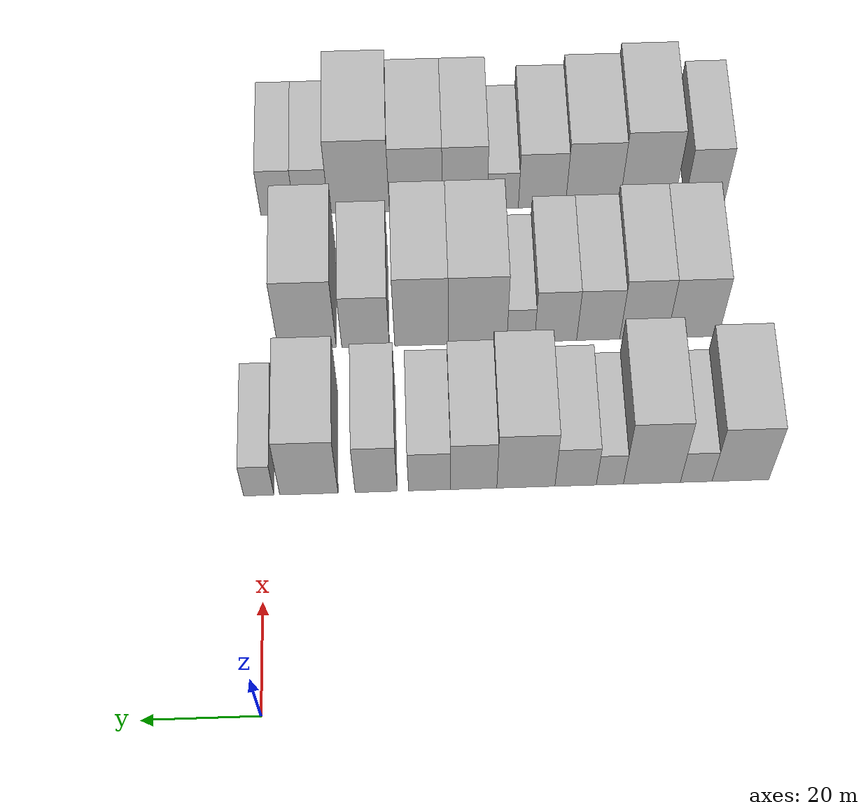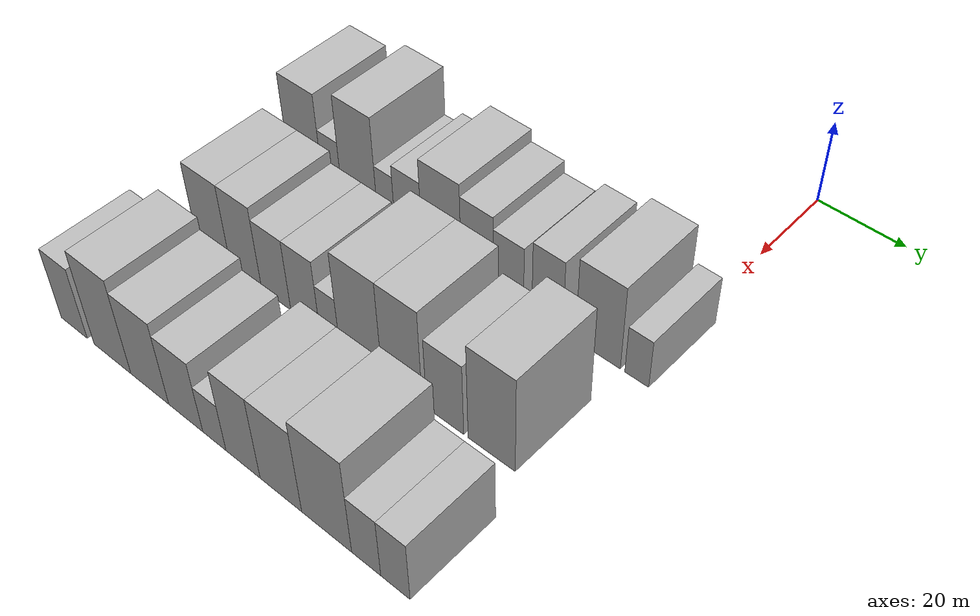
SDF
<sdf version="1.6">
 <world name="default">
  <model name="building_29">
   <static>1</static>
   <pose>50.0000 -83.8792 0 0.000000 0.000000 0.000000</pose>
   <link name="link">
    <pose>0 0 10.50 0 0 0</pose>
    <collision name="collision"><geometry><box><size>20.0000 10.0511 21.0000</size></box></geometry></collision>
    <visual name="visual">
     <cast_shadows>0</cast_shadows>
     <geometry><box><size>20.0000 10.0511 21.0000</size></box></geometry>
     <material>
      <script>
       <uri>model://HANNAS_wall/materials/scripts</uri>
       <uri>model://HANNAS_wall/materials/textures</uri>
       <name>vrc/HANNAS_wall</name>
      </script>
     </material>
    </visual>
   </link>
  </model>
  <model name="building_30">
   <static>1</static>
   <pose>50.0000 -76.0548 0 0.000000 0.000000 0.000000</pose>
   <link name="link">
    <pose>0 0 6.00 0 0 0</pose>
    <collision name="collision"><geometry><box><size>20.0000 5.5977 12.0000</size></box></geometry></collision>
    <visual name="visual">
     <cast_shadows>0</cast_shadows>
     <geometry><box><size>20.0000 5.5977 12.0000</size></box></geometry>
     <material>
      <script>
       <uri>model://HANNAS_wall/materials/scripts</uri>
       <uri>model://HANNAS_wall/materials/textures</uri>
       <name>vrc/HANNAS_wall</name>
      </script>
     </material>
    </visual>
   </link>
  </model>
  <model name="building_31">
   <static>1</static>
   <pose>50.0000 -68.2252 0 0.000000 0.000000 0.000000</pose>
   <link name="link">
    <pose>0 0 12.00 0 0 0</pose>
    <collision name="collision"><geometry><box><size>20.0000 10.0615 24.0000</size></box></geometry></collision>
    <visual name="visual">
     <cast_shadows>0</cast_shadows>
     <geometry><box><size>20.0000 10.0615 24.0000</size></box></geometry>
     <material>
      <script>
       <uri>model://HANNAS_wall/materials/scripts</uri>
       <uri>model://HANNAS_wall/materials/textures</uri>
       <name>vrc/HANNAS_wall</name>
      </script>
     </material>
    </visual>
   </link>
  </model>
  <model name="building_32">
   <static>1</static>
   <pose>50.0000 -60.7939 0 0.000000 0.000000 0.000000</pose>
   <link name="link">
    <pose>0 0 6.00 0 0 0</pose>
    <collision name="collision"><geometry><box><size>20.0000 4.8011 12.0000</size></box></geometry></collision>
    <visual name="visual">
     <cast_shadows>0</cast_shadows>
     <geometry><box><size>20.0000 4.8011 12.0000</size></box></geometry>
     <material>
      <script>
       <uri>model://HANNAS_wall/materials/scripts</uri>
       <uri>model://HANNAS_wall/materials/textures</uri>
       <name>vrc/HANNAS_wall</name>
      </script>
     </material>
    </visual>
   </link>
  </model>
  <model name="building_33">
   <static>1</static>
   <pose>50.0000 -54.7445 0 0.000000 0.000000 0.000000</pose>
   <link name="link">
    <pose>0 0 7.50 0 0 0</pose>
    <collision name="collision"><geometry><box><size>20.0000 7.2978 15.0000</size></box></geometry></collision>
    <visual name="visual">
     <cast_shadows>0</cast_shadows>
     <geometry><box><size>20.0000 7.2978 15.0000</size></box></geometry>
     <material>
      <script>
       <uri>model://HANNAS_wall/materials/scripts</uri>
       <uri>model://HANNAS_wall/materials/textures</uri>
       <name>vrc/HANNAS_wall</name>
      </script>
     </material>
    </visual>
   </link>
  </model>
  <model name="building_34">
   <static>1</static>
   <pose>50.0000 -45.9717 0 0.000000 0.000000 0.000000</pose>
   <link name="link">
    <pose>0 0 10.50 0 0 0</pose>
    <collision name="collision"><geometry><box><size>20.0000 10.2478 21.0000</size></box></geometry></collision>
    <visual name="visual">
     <cast_shadows>0</cast_shadows>
     <geometry><box><size>20.0000 10.2478 21.0000</size></box></geometry>
     <material>
      <script>
       <uri>model://HANNAS_wall/materials/scripts</uri>
       <uri>model://HANNAS_wall/materials/textures</uri>
       <name>vrc/HANNAS_wall</name>
      </script>
     </material>
    </visual>
   </link>
  </model>
  <model name="building_35">
   <static>1</static>
   <pose>50.0000 -36.7895 0 0.000000 0.000000 0.000000</pose>
   <link name="link">
    <pose>0 0 9.00 0 0 0</pose>
    <collision name="collision"><geometry><box><size>20.0000 8.1166 18.0000</size></box></geometry></collision>
    <visual name="visual">
     <cast_shadows>0</cast_shadows>
     <geometry><box><size>20.0000 8.1166 18.0000</size></box></geometry>
     <material>
      <script>
       <uri>model://HANNAS_wall/materials/scripts</uri>
       <uri>model://HANNAS_wall/materials/textures</uri>
       <name>vrc/HANNAS_wall</name>
      </script>
     </material>
    </visual>
   </link>
  </model>
  <model name="building_36">
   <static>1</static>
   <pose>50.0000 -29.0209 0 0.000000 0.000000 0.000000</pose>
   <link name="link">
    <pose>0 0 7.50 0 0 0</pose>
    <collision name="collision"><geometry><box><size>20.0000 7.4207 15.0000</size></box></geometry></collision>
    <visual name="visual">
     <cast_shadows>0</cast_shadows>
     <geometry><box><size>20.0000 7.4207 15.0000</size></box></geometry>
     <material>
      <script>
       <uri>model://HANNAS_wall/materials/scripts</uri>
       <uri>model://HANNAS_wall/materials/textures</uri>
       <name>vrc/HANNAS_wall</name>
      </script>
     </material>
    </visual>
   </link>
  </model>
  <model name="building_37">
   <static>1</static>
   <pose>50.0000 -19.6073 0 0.000000 0.000000 0.000000</pose>
   <link name="link">
    <pose>0 0 9.00 0 0 0</pose>
    <collision name="collision"><geometry><box><size>20.0000 7.4065 18.0000</size></box></geometry></collision>
    <visual name="visual">
     <cast_shadows>0</cast_shadows>
     <geometry><box><size>20.0000 7.4065 18.0000</size></box></geometry>
     <material>
      <script>
       <uri>model://HANNAS_wall/materials/scripts</uri>
       <uri>model://HANNAS_wall/materials/textures</uri>
       <name>vrc/HANNAS_wall</name>
      </script>
     </material>
    </visual>
   </link>
  </model>
  <model name="building_38">
   <static>1</static>
   <pose>50.0000 -7.7778 0 0.000000 0.000000 0.000000</pose>
   <link name="link">
    <pose>0 0 10.50 0 0 0</pose>
    <collision name="collision"><geometry><box><size>20.0000 10.2526 21.0000</size></box></geometry></collision>
    <visual name="visual">
     <cast_shadows>0</cast_shadows>
     <geometry><box><size>20.0000 10.2526 21.0000</size></box></geometry>
     <material>
      <script>
       <uri>model://HANNAS_wall/materials/scripts</uri>
       <uri>model://HANNAS_wall/materials/textures</uri>
       <name>vrc/HANNAS_wall</name>
      </script>
     </material>
    </visual>
   </link>
  </model>
  <model name="building_39">
   <static>1</static>
   <pose>50.0000 1.0077 0 0.000000 0.000000 0.000000</pose>
   <link name="link">
    <pose>0 0 6.00 0 0 0</pose>
    <collision name="collision"><geometry><box><size>20.0000 5.3183 12.0000</size></box></geometry></collision>
    <visual name="visual">
     <cast_shadows>0</cast_shadows>
     <geometry><box><size>20.0000 5.3183 12.0000</size></box></geometry>
     <material>
      <script>
       <uri>model://HANNAS_wall/materials/scripts</uri>
       <uri>model://HANNAS_wall/materials/textures</uri>
       <name>vrc/HANNAS_wall</name>
      </script>
     </material>
    </visual>
   </link>
  </model>
  <model name="building_106">
   <static>1</static>
   <pose>79.0000 -78.1845 0 0.000000 0.000000 0.000000</pose>
   <link name="link">
    <pose>0 0 10.50 0 0 0</pose>
    <collision name="collision"><geometry><box><size>20.0000 9.4783 21.0000</size></box></geometry></collision>
    <visual name="visual">
     <cast_shadows>0</cast_shadows>
     <geometry><box><size>20.0000 9.4783 21.0000</size></box></geometry>
     <material>
      <script>
       <uri>model://HANNAS_wall/materials/scripts</uri>
       <uri>model://HANNAS_wall/materials/textures</uri>
       <name>vrc/HANNAS_wall</name>
      </script>
     </material>
    </visual>
   </link>
  </model>
  <model name="building_107">
   <static>1</static>
   <pose>79.0000 -69.0837 0 0.000000 0.000000 0.000000</pose>
   <link name="link">
    <pose>0 0 10.50 0 0 0</pose>
    <collision name="collision"><geometry><box><size>20.0000 8.7234 21.0000</size></box></geometry></collision>
    <visual name="visual">
     <cast_shadows>0</cast_shadows>
     <geometry><box><size>20.0000 8.7234 21.0000</size></box></geometry>
     <material>
      <script>
       <uri>model://HANNAS_wall/materials/scripts</uri>
       <uri>model://HANNAS_wall/materials/textures</uri>
       <name>vrc/HANNAS_wall</name>
      </script>
     </material>
    </visual>
   </link>
  </model>
  <model name="building_108">
   <static>1</static>
   <pose>79.0000 -60.7558 0 0.000000 0.000000 0.000000</pose>
   <link name="link">
    <pose>0 0 9.00 0 0 0</pose>
    <collision name="collision"><geometry><box><size>20.0000 7.9325 18.0000</size></box></geometry></collision>
    <visual name="visual">
     <cast_shadows>0</cast_shadows>
     <geometry><box><size>20.0000 7.9325 18.0000</size></box></geometry>
     <material>
      <script>
       <uri>model://HANNAS_wall/materials/scripts</uri>
       <uri>model://HANNAS_wall/materials/textures</uri>
       <name>vrc/HANNAS_wall</name>
      </script>
     </material>
    </visual>
   </link>
  </model>
  <model name="building_109">
   <static>1</static>
   <pose>79.0000 -52.9318 0 0.000000 0.000000 0.000000</pose>
   <link name="link">
    <pose>0 0 9.00 0 0 0</pose>
    <collision name="collision"><geometry><box><size>20.0000 7.7155 18.0000</size></box></geometry></collision>
    <visual name="visual">
     <cast_shadows>0</cast_shadows>
     <geometry><box><size>20.0000 7.7155 18.0000</size></box></geometry>
     <material>
      <script>
       <uri>model://HANNAS_wall/materials/scripts</uri>
       <uri>model://HANNAS_wall/materials/textures</uri>
       <name>vrc/HANNAS_wall</name>
      </script>
     </material>
    </visual>
   </link>
  </model>
  <model name="building_110">
   <static>1</static>
   <pose>79.0000 -46.5285 0 0.000000 0.000000 0.000000</pose>
   <link name="link">
    <pose>0 0 6.00 0 0 0</pose>
    <collision name="collision"><geometry><box><size>20.0000 5.0912 12.0000</size></box></geometry></collision>
    <visual name="visual">
     <cast_shadows>0</cast_shadows>
     <geometry><box><size>20.0000 5.0912 12.0000</size></box></geometry>
     <material>
      <script>
       <uri>model://HANNAS_wall/materials/scripts</uri>
       <uri>model://HANNAS_wall/materials/textures</uri>
       <name>vrc/HANNAS_wall</name>
      </script>
     </material>
    </visual>
   </link>
  </model>
  <model name="building_111">
   <static>1</static>
   <pose>79.0000 -38.6144 0 0.000000 0.000000 0.000000</pose>
   <link name="link">
    <pose>0 0 12.00 0 0 0</pose>
    <collision name="collision"><geometry><box><size>20.0000 10.7369 24.0000</size></box></geometry></collision>
    <visual name="visual">
     <cast_shadows>0</cast_shadows>
     <geometry><box><size>20.0000 10.7369 24.0000</size></box></geometry>
     <material>
      <script>
       <uri>model://HANNAS_wall/materials/scripts</uri>
       <uri>model://HANNAS_wall/materials/textures</uri>
       <name>vrc/HANNAS_wall</name>
      </script>
     </material>
    </visual>
   </link>
  </model>
  <model name="building_112">
   <static>1</static>
   <pose>79.0000 -28.3461 0 0.000000 0.000000 0.000000</pose>
   <link name="link">
    <pose>0 0 12.00 0 0 0</pose>
    <collision name="collision"><geometry><box><size>20.0000 9.7996 24.0000</size></box></geometry></collision>
    <visual name="visual">
     <cast_shadows>0</cast_shadows>
     <geometry><box><size>20.0000 9.7996 24.0000</size></box></geometry>
     <material>
      <script>
       <uri>model://HANNAS_wall/materials/scripts</uri>
       <uri>model://HANNAS_wall/materials/textures</uri>
       <name>vrc/HANNAS_wall</name>
      </script>
     </material>
    </visual>
   </link>
  </model>
  <model name="building_113">
   <static>1</static>
   <pose>79.0000 -18.0942 0 0.000000 0.000000 0.000000</pose>
   <link name="link">
    <pose>0 0 9.00 0 0 0</pose>
    <collision name="collision"><geometry><box><size>20.0000 8.7042 18.0000</size></box></geometry></collision>
    <visual name="visual">
     <cast_shadows>0</cast_shadows>
     <geometry><box><size>20.0000 8.7042 18.0000</size></box></geometry>
     <material>
      <script>
       <uri>model://HANNAS_wall/materials/scripts</uri>
       <uri>model://HANNAS_wall/materials/textures</uri>
       <name>vrc/HANNAS_wall</name>
      </script>
     </material>
    </visual>
   </link>
  </model>
  <model name="building_114">
   <static>1</static>
   <pose>79.0000 -7.4302 0 0.000000 0.000000 0.000000</pose>
   <link name="link">
    <pose>0 0 12.00 0 0 0</pose>
    <collision name="collision"><geometry><box><size>20.0000 10.6237 24.0000</size></box></geometry></collision>
    <visual name="visual">
     <cast_shadows>0</cast_shadows>
     <geometry><box><size>20.0000 10.6237 24.0000</size></box></geometry>
     <material>
      <script>
       <uri>model://HANNAS_wall/materials/scripts</uri>
       <uri>model://HANNAS_wall/materials/textures</uri>
       <name>vrc/HANNAS_wall</name>
      </script>
     </material>
    </visual>
   </link>
  </model>
  <model name="building_185">
   <static>1</static>
   <pose>108.0000 -83.1524 0 0.000000 0.000000 0.000000</pose>
   <link name="link">
    <pose>0 0 9.00 0 0 0</pose>
    <collision name="collision"><geometry><box><size>20.0000 7.6091 18.0000</size></box></geometry></collision>
    <visual name="visual">
     <cast_shadows>0</cast_shadows>
     <geometry><box><size>20.0000 7.6091 18.0000</size></box></geometry>
     <material>
      <script>
       <uri>model://HANNAS_wall/materials/scripts</uri>
       <uri>model://HANNAS_wall/materials/textures</uri>
       <name>vrc/HANNAS_wall</name>
      </script>
     </material>
    </visual>
   </link>
  </model>
  <model name="building_186">
   <static>1</static>
   <pose>108.0000 -72.1234 0 0.000000 0.000000 0.000000</pose>
   <link name="link">
    <pose>0 0 12.00 0 0 0</pose>
    <collision name="collision"><geometry><box><size>20.0000 10.4487 24.0000</size></box></geometry></collision>
    <visual name="visual">
     <cast_shadows>0</cast_shadows>
     <geometry><box><size>20.0000 10.4487 24.0000</size></box></geometry>
     <material>
      <script>
       <uri>model://HANNAS_wall/materials/scripts</uri>
       <uri>model://HANNAS_wall/materials/textures</uri>
       <name>vrc/HANNAS_wall</name>
      </script>
     </material>
    </visual>
   </link>
  </model>
  <model name="building_187">
   <static>1</static>
   <pose>108.0000 -61.7121 0 0.000000 0.000000 0.000000</pose>
   <link name="link">
    <pose>0 0 10.50 0 0 0</pose>
    <collision name="collision"><geometry><box><size>20.0000 10.3739 21.0000</size></box></geometry></collision>
    <visual name="visual">
     <cast_shadows>0</cast_shadows>
     <geometry><box><size>20.0000 10.3739 21.0000</size></box></geometry>
     <material>
      <script>
       <uri>model://HANNAS_wall/materials/scripts</uri>
       <uri>model://HANNAS_wall/materials/textures</uri>
       <name>vrc/HANNAS_wall</name>
      </script>
     </material>
    </visual>
   </link>
  </model>
  <model name="building_188">
   <static>1</static>
   <pose>108.0000 -52.0354 0 0.000000 0.000000 0.000000</pose>
   <link name="link">
    <pose>0 0 9.00 0 0 0</pose>
    <collision name="collision"><geometry><box><size>20.0000 8.9794 18.0000</size></box></geometry></collision>
    <visual name="visual">
     <cast_shadows>0</cast_shadows>
     <geometry><box><size>20.0000 8.9794 18.0000</size></box></geometry>
     <material>
      <script>
       <uri>model://HANNAS_wall/materials/scripts</uri>
       <uri>model://HANNAS_wall/materials/textures</uri>
       <name>vrc/HANNAS_wall</name>
      </script>
     </material>
    </visual>
   </link>
  </model>
  <model name="building_189">
   <static>1</static>
   <pose>108.0000 -44.5604 0 0.000000 0.000000 0.000000</pose>
   <link name="link">
    <pose>0 0 6.00 0 0 0</pose>
    <collision name="collision"><geometry><box><size>20.0000 5.9706 12.0000</size></box></geometry></collision>
    <visual name="visual">
     <cast_shadows>0</cast_shadows>
     <geometry><box><size>20.0000 5.9706 12.0000</size></box></geometry>
     <material>
      <script>
       <uri>model://HANNAS_wall/materials/scripts</uri>
       <uri>model://HANNAS_wall/materials/textures</uri>
       <name>vrc/HANNAS_wall</name>
      </script>
     </material>
    </visual>
   </link>
  </model>
  <model name="building_190">
   <static>1</static>
   <pose>108.0000 -37.3067 0 0.000000 0.000000 0.000000</pose>
   <link name="link">
    <pose>0 0 10.50 0 0 0</pose>
    <collision name="collision"><geometry><box><size>20.0000 8.5370 21.0000</size></box></geometry></collision>
    <visual name="visual">
     <cast_shadows>0</cast_shadows>
     <geometry><box><size>20.0000 8.5370 21.0000</size></box></geometry>
     <material>
      <script>
       <uri>model://HANNAS_wall/materials/scripts</uri>
       <uri>model://HANNAS_wall/materials/textures</uri>
       <name>vrc/HANNAS_wall</name>
      </script>
     </material>
    </visual>
   </link>
  </model>
  <model name="building_191">
   <static>1</static>
   <pose>108.0000 -28.0119 0 0.000000 0.000000 0.000000</pose>
   <link name="link">
    <pose>0 0 10.50 0 0 0</pose>
    <collision name="collision"><geometry><box><size>20.0000 10.0527 21.0000</size></box></geometry></collision>
    <visual name="visual">
     <cast_shadows>0</cast_shadows>
     <geometry><box><size>20.0000 10.0527 21.0000</size></box></geometry>
     <material>
      <script>
       <uri>model://HANNAS_wall/materials/scripts</uri>
       <uri>model://HANNAS_wall/materials/textures</uri>
       <name>vrc/HANNAS_wall</name>
      </script>
     </material>
    </visual>
   </link>
  </model>
  <model name="building_192">
   <static>1</static>
   <pose>108.0000 -17.2031 0 0.000000 0.000000 0.000000</pose>
   <link name="link">
    <pose>0 0 12.00 0 0 0</pose>
    <collision name="collision"><geometry><box><size>20.0000 11.5648 24.0000</size></box></geometry></collision>
    <visual name="visual">
     <cast_shadows>0</cast_shadows>
     <geometry><box><size>20.0000 11.5648 24.0000</size></box></geometry>
     <material>
      <script>
       <uri>model://HANNAS_wall/materials/scripts</uri>
       <uri>model://HANNAS_wall/materials/textures</uri>
       <name>vrc/HANNAS_wall</name>
      </script>
     </material>
    </visual>
   </link>
  </model>
  <model name="building_193">
   <static>1</static>
   <pose>108.0000 -8.1681 0 0.000000 0.000000 0.000000</pose>
   <link name="link">
    <pose>0 0 7.50 0 0 0</pose>
    <collision name="collision"><geometry><box><size>20.0000 6.5052 15.0000</size></box></geometry></collision>
    <visual name="visual">
     <cast_shadows>0</cast_shadows>
     <geometry><box><size>20.0000 6.5052 15.0000</size></box></geometry>
     <material>
      <script>
       <uri>model://HANNAS_wall/materials/scripts</uri>
       <uri>model://HANNAS_wall/materials/textures</uri>
       <name>vrc/HANNAS_wall</name>
      </script>
     </material>
    </visual>
   </link>
  </model>
  <model name="building_194">
   <static>1</static>
   <pose>108.0000 -1.7279 0 0.000000 0.000000 0.000000</pose>
   <link name="link">
    <pose>0 0 7.50 0 0 0</pose>
    <collision name="collision"><geometry><box><size>20.0000 6.3752 15.0000</size></box></geometry></collision>
    <visual name="visual">
     <cast_shadows>0</cast_shadows>
     <geometry><box><size>20.0000 6.3752 15.0000</size></box></geometry>
     <material>
      <script>
       <uri>model://HANNAS_wall/materials/scripts</uri>
       <uri>model://HANNAS_wall/materials/textures</uri>
       <name>vrc/HANNAS_wall</name>
      </script>
     </material>
    </visual>
   </link>
  </model>
 </world>
</sdf>
